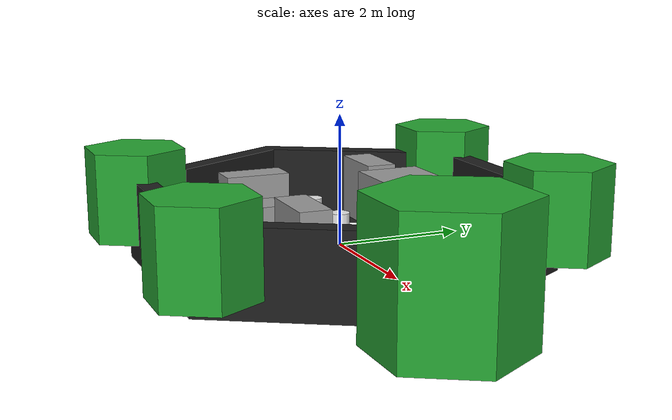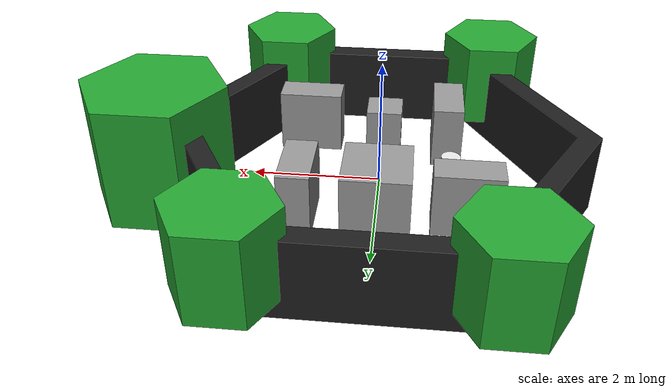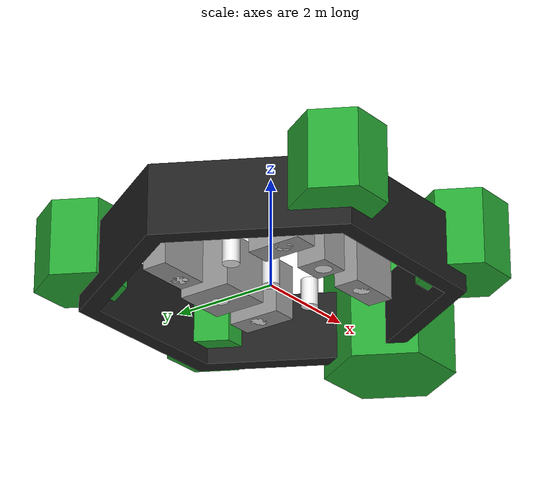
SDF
<?xml version='1.0'?>
<sdf version='1.6'>
  <model name='modified_start_world.world'>
    <link name='symbol'>
      <self_collide>0</self_collide>
      <enable_wind>0</enable_wind>
      <kinematic>0</kinematic>
      <pose frame=''>0 0 0 0 -0 0</pose>
      <visual name='one_one'>
        <pose frame=''>-1.1 -1.1 0.25 0 -0 0</pose>
        <geometry>
          <cylinder>
            <radius>0.15</radius>
            <length>0.5</length>
          </cylinder>
        </geometry>
        <material>
          <script>
            <uri>file://media/materials/scripts/gazebo.material</uri>
            <name>Gazebo/White</name>
          </script>
        </material>
        <transparency>0</transparency>
        <cast_shadows>1</cast_shadows>
      </visual>
      <visual name='one_two'>
        <pose frame=''>-1.1 0 0.25 0 -0 0</pose>
        <geometry>
          <cylinder>
            <radius>0.15</radius>
            <length>0.5</length>
          </cylinder>
        </geometry>
        <material>
          <script>
            <uri>file://media/materials/scripts/gazebo.material</uri>
            <name>Gazebo/White</name>
          </script>
        </material>
        <transparency>0</transparency>
        <cast_shadows>1</cast_shadows>
      </visual>
      <visual name='one_three'>
        <pose frame=''>-1.1 1.1 0.25 0 -0 0</pose>
        <geometry>
          <cylinder>
            <radius>0.15</radius>
            <length>0.5</length>
          </cylinder>
        </geometry>
        <material>
          <script>
            <uri>file://media/materials/scripts/gazebo.material</uri>
            <name>Gazebo/White</name>
          </script>
        </material>
        <transparency>0</transparency>
        <cast_shadows>1</cast_shadows>
      </visual>
      <visual name='two_one'>
        <pose frame=''>0 -1.1 0.25 0 -0 0</pose>
        <geometry>
          <cylinder>
            <radius>0.15</radius>
            <length>0.5</length>
          </cylinder>
        </geometry>
        <material>
          <script>
            <uri>file://media/materials/scripts/gazebo.material</uri>
            <name>Gazebo/White</name>
          </script>
        </material>
        <transparency>0</transparency>
        <cast_shadows>1</cast_shadows>
      </visual>
      <visual name='two_two'>
        <pose frame=''>0 0 0.25 0 -0 0</pose>
        <geometry>
          <cylinder>
            <radius>0.15</radius>
            <length>0.5</length>
          </cylinder>
        </geometry>
        <material>
          <script>
            <uri>file://media/materials/scripts/gazebo.material</uri>
            <name>Gazebo/White</name>
          </script>
        </material>
        <transparency>0</transparency>
        <cast_shadows>1</cast_shadows>
      </visual>
      <visual name='two_three'>
        <pose frame=''>0 1.1 0.25 0 -0 0</pose>
        <geometry>
          <cylinder>
            <radius>0.15</radius>
            <length>0.5</length>
          </cylinder>
        </geometry>
        <material>
          <script>
            <uri>file://media/materials/scripts/gazebo.material</uri>
            <name>Gazebo/White</name>
          </script>
        </material>
        <transparency>0</transparency>
        <cast_shadows>1</cast_shadows>
      </visual>
      <visual name='three_one'>
        <pose frame=''>1.1 -1.1 0.25 0 -0 0</pose>
        <geometry>
          <cylinder>
            <radius>0.15</radius>
            <length>0.5</length>
          </cylinder>
        </geometry>
        <material>
          <script>
            <uri>file://media/materials/scripts/gazebo.material</uri>
            <name>Gazebo/White</name>
          </script>
        </material>
        <transparency>0</transparency>
        <cast_shadows>1</cast_shadows>
      </visual>
      <visual name='three_two'>
        <pose frame=''>1.1 0 0.25 0 -0 0</pose>
        <geometry>
          <cylinder>
            <radius>0.15</radius>
            <length>0.5</length>
          </cylinder>
        </geometry>
        <material>
          <script>
            <uri>file://media/materials/scripts/gazebo.material</uri>
            <name>Gazebo/White</name>
          </script>
        </material>
        <transparency>0</transparency>
        <cast_shadows>1</cast_shadows>
      </visual>
      <visual name='three_three'>
        <pose frame=''>1.1 1.1 0.25 0 -0 0</pose>
        <geometry>
          <cylinder>
            <radius>0.15</radius>
            <length>0.5</length>
          </cylinder>
        </geometry>
        <material>
          <script>
            <uri>file://media/materials/scripts/gazebo.material</uri>
            <name>Gazebo/White</name>
          </script>
        </material>
        <transparency>0</transparency>
        <cast_shadows>1</cast_shadows>
      </visual>
      <visual name='head'>
        <pose frame=''>3.5 0 -0.5 0 -0 0</pose>
        <geometry>
          <mesh>
            <uri>model://turtlebot3/meshes/hexagon.dae</uri>
            <scale>0.8 0.8 0.8</scale>
          </mesh>
        </geometry>
        <material>
          <script>
            <uri>file://media/materials/scripts/gazebo.material</uri>
            <name>Gazebo/Green</name>
          </script>
        </material>
        <transparency>0</transparency>
        <cast_shadows>1</cast_shadows>
      </visual>
      <visual name='left_hand'>
        <pose frame=''>1.8 2.7 0 0 -0 0</pose>
        <geometry>
          <mesh>
            <uri>model://turtlebot3/meshes/hexagon.dae</uri>
            <scale>0.55 0.55 0.55</scale>
          </mesh>
        </geometry>
        <material>
          <script>
            <uri>file://media/materials/scripts/gazebo.material</uri>
            <name>Gazebo/Green</name>
          </script>
        </material>
        <transparency>0</transparency>
        <cast_shadows>1</cast_shadows>
      </visual>
      <visual name='right_hand'>
        <pose frame=''>1.8 -2.7 0 0 -0 0</pose>
        <geometry>
          <mesh>
            <uri>model://turtlebot3/meshes/hexagon.dae</uri>
            <scale>0.55 0.55 0.55</scale>
          </mesh>
        </geometry>
        <material>
          <script>
            <uri>file://media/materials/scripts/gazebo.material</uri>
            <name>Gazebo/Green</name>
          </script>
        </material>
        <transparency>0</transparency>
        <cast_shadows>1</cast_shadows>
      </visual>
      <visual name='left_foot'>
        <pose frame=''>-1.8 2.7 0 0 -0 0</pose>
        <geometry>
          <mesh>
            <uri>model://turtlebot3/meshes/hexagon.dae</uri>
            <scale>0.55 0.55 0.55</scale>
          </mesh>
        </geometry>
        <material>
          <script>
            <uri>file://media/materials/scripts/gazebo.material</uri>
            <name>Gazebo/Green</name>
          </script>
        </material>
        <transparency>0</transparency>
        <cast_shadows>1</cast_shadows>
      </visual>
      <visual name='right_foot'>
        <pose frame=''>-1.8 -2.7 0 0 -0 0</pose>
        <geometry>
          <mesh>
            <uri>model://turtlebot3/meshes/hexagon.dae</uri>
            <scale>0.55 0.55 0.55</scale>
          </mesh>
        </geometry>
        <material>
          <script>
            <uri>file://media/materials/scripts/gazebo.material</uri>
            <name>Gazebo/Green</name>
          </script>
        </material>
        <transparency>0</transparency>
        <cast_shadows>1</cast_shadows>
      </visual>
      <visual name='body'>
        <pose frame=''>0 0 -0.3 0 0 -1.5708</pose>
        <geometry>
          <mesh>
            <uri>model://turtlebot3/meshes/wall.dae</uri>
            <scale>0.25 0.25 0.25</scale>
          </mesh>
        </geometry>
        <material>
          <script>
            <uri>file://media/materials/scripts/gazebo.material</uri>
            <name>Gazebo/FlatBlack</name>
          </script>
        </material>
        <transparency>0</transparency>
        <cast_shadows>1</cast_shadows>
      </visual>
      <collision name='one_one'>
        <laser_retro>0</laser_retro>
        <max_contacts>10</max_contacts>
        <pose frame=''>-1.1 -1.1 0.25 0 -0 0</pose>
        <geometry>
          <cylinder>
            <radius>0.15</radius>
            <length>0.5</length>
          </cylinder>
        </geometry>
        <surface>
          <friction>
            <ode>
              <mu>1</mu>
              <mu2>1</mu2>
              <fdir1>0 0 0</fdir1>
              <slip1>0</slip1>
              <slip2>0</slip2>
            </ode>
            <torsional>
              <coefficient>1</coefficient>
              <patch_radius>0</patch_radius>
              <surface_radius>0</surface_radius>
              <use_patch_radius>1</use_patch_radius>
              <ode>
                <slip>0</slip>
              </ode>
            </torsional>
          </friction>
          <bounce>
            <restitution_coefficient>0</restitution_coefficient>
            <threshold>1e+06</threshold>
          </bounce>
          <contact>
            <collide_without_contact>0</collide_without_contact>
            <collide_without_contact_bitmask>1</collide_without_contact_bitmask>
            <collide_bitmask>1</collide_bitmask>
            <ode>
              <soft_cfm>0</soft_cfm>
              <soft_erp>0.2</soft_erp>
              <kp>1e+13</kp>
              <kd>1</kd>
              <max_vel>0.01</max_vel>
              <min_depth>0</min_depth>
            </ode>
            <bullet>
              <split_impulse>1</split_impulse>
              <split_impulse_penetration_threshold>-0.01</split_impulse_penetration_threshold>
              <soft_cfm>0</soft_cfm>
              <soft_erp>0.2</soft_erp>
              <kp>1e+13</kp>
              <kd>1</kd>
            </bullet>
          </contact>
        </surface>
      </collision>
      <collision name='one_two'>
        <laser_retro>0</laser_retro>
        <max_contacts>10</max_contacts>
        <pose frame=''>-1.1 0 0.25 0 -0 0</pose>
        <geometry>
          <cylinder>
            <radius>0.15</radius>
            <length>0.5</length>
          </cylinder>
        </geometry>
        <surface>
          <friction>
            <ode>
              <mu>1</mu>
              <mu2>1</mu2>
              <fdir1>0 0 0</fdir1>
              <slip1>0</slip1>
              <slip2>0</slip2>
            </ode>
            <torsional>
              <coefficient>1</coefficient>
              <patch_radius>0</patch_radius>
              <surface_radius>0</surface_radius>
              <use_patch_radius>1</use_patch_radius>
              <ode>
                <slip>0</slip>
              </ode>
            </torsional>
          </friction>
          <bounce>
            <restitution_coefficient>0</restitution_coefficient>
            <threshold>1e+06</threshold>
          </bounce>
          <contact>
            <collide_without_contact>0</collide_without_contact>
            <collide_without_contact_bitmask>1</collide_without_contact_bitmask>
            <collide_bitmask>1</collide_bitmask>
            <ode>
              <soft_cfm>0</soft_cfm>
              <soft_erp>0.2</soft_erp>
              <kp>1e+13</kp>
              <kd>1</kd>
              <max_vel>0.01</max_vel>
              <min_depth>0</min_depth>
            </ode>
            <bullet>
              <split_impulse>1</split_impulse>
              <split_impulse_penetration_threshold>-0.01</split_impulse_penetration_threshold>
              <soft_cfm>0</soft_cfm>
              <soft_erp>0.2</soft_erp>
              <kp>1e+13</kp>
              <kd>1</kd>
            </bullet>
          </contact>
        </surface>
      </collision>
      <collision name='one_three'>
        <laser_retro>0</laser_retro>
        <max_contacts>10</max_contacts>
        <pose frame=''>-1.1 1.1 0.25 0 -0 0</pose>
        <geometry>
          <cylinder>
            <radius>0.15</radius>
            <length>0.5</length>
          </cylinder>
        </geometry>
        <surface>
          <friction>
            <ode>
              <mu>1</mu>
              <mu2>1</mu2>
              <fdir1>0 0 0</fdir1>
              <slip1>0</slip1>
              <slip2>0</slip2>
            </ode>
            <torsional>
              <coefficient>1</coefficient>
              <patch_radius>0</patch_radius>
              <surface_radius>0</surface_radius>
              <use_patch_radius>1</use_patch_radius>
              <ode>
                <slip>0</slip>
              </ode>
            </torsional>
          </friction>
          <bounce>
            <restitution_coefficient>0</restitution_coefficient>
            <threshold>1e+06</threshold>
          </bounce>
          <contact>
            <collide_without_contact>0</collide_without_contact>
            <collide_without_contact_bitmask>1</collide_without_contact_bitmask>
            <collide_bitmask>1</collide_bitmask>
            <ode>
              <soft_cfm>0</soft_cfm>
              <soft_erp>0.2</soft_erp>
              <kp>1e+13</kp>
              <kd>1</kd>
              <max_vel>0.01</max_vel>
              <min_depth>0</min_depth>
            </ode>
            <bullet>
              <split_impulse>1</split_impulse>
              <split_impulse_penetration_threshold>-0.01</split_impulse_penetration_threshold>
              <soft_cfm>0</soft_cfm>
              <soft_erp>0.2</soft_erp>
              <kp>1e+13</kp>
              <kd>1</kd>
            </bullet>
          </contact>
        </surface>
      </collision>
      <collision name='two_one'>
        <laser_retro>0</laser_retro>
        <max_contacts>10</max_contacts>
        <pose frame=''>0 -1.1 0.25 0 -0 0</pose>
        <geometry>
          <cylinder>
            <radius>0.15</radius>
            <length>0.5</length>
          </cylinder>
        </geometry>
        <surface>
          <friction>
            <ode>
              <mu>1</mu>
              <mu2>1</mu2>
              <fdir1>0 0 0</fdir1>
              <slip1>0</slip1>
              <slip2>0</slip2>
            </ode>
            <torsional>
              <coefficient>1</coefficient>
              <patch_radius>0</patch_radius>
              <surface_radius>0</surface_radius>
              <use_patch_radius>1</use_patch_radius>
              <ode>
                <slip>0</slip>
              </ode>
            </torsional>
          </friction>
          <bounce>
            <restitution_coefficient>0</restitution_coefficient>
            <threshold>1e+06</threshold>
          </bounce>
          <contact>
            <collide_without_contact>0</collide_without_contact>
            <collide_without_contact_bitmask>1</collide_without_contact_bitmask>
            <collide_bitmask>1</collide_bitmask>
            <ode>
              <soft_cfm>0</soft_cfm>
              <soft_erp>0.2</soft_erp>
              <kp>1e+13</kp>
              <kd>1</kd>
              <max_vel>0.01</max_vel>
              <min_depth>0</min_depth>
            </ode>
            <bullet>
              <split_impulse>1</split_impulse>
              <split_impulse_penetration_threshold>-0.01</split_impulse_penetration_threshold>
              <soft_cfm>0</soft_cfm>
              <soft_erp>0.2</soft_erp>
              <kp>1e+13</kp>
              <kd>1</kd>
            </bullet>
          </contact>
        </surface>
      </collision>
      <collision name='two_two'>
        <laser_retro>0</laser_retro>
        <max_contacts>10</max_contacts>
        <pose frame=''>0 0 0.25 0 -0 0</pose>
        <geometry>
          <cylinder>
            <radius>0.15</radius>
            <length>0.5</length>
          </cylinder>
        </geometry>
        <surface>
          <friction>
            <ode>
              <mu>1</mu>
              <mu2>1</mu2>
              <fdir1>0 0 0</fdir1>
              <slip1>0</slip1>
              <slip2>0</slip2>
            </ode>
            <torsional>
              <coefficient>1</coefficient>
              <patch_radius>0</patch_radius>
              <surface_radius>0</surface_radius>
              <use_patch_radius>1</use_patch_radius>
              <ode>
                <slip>0</slip>
              </ode>
            </torsional>
          </friction>
          <bounce>
            <restitution_coefficient>0</restitution_coefficient>
            <threshold>1e+06</threshold>
          </bounce>
          <contact>
            <collide_without_contact>0</collide_without_contact>
            <collide_without_contact_bitmask>1</collide_without_contact_bitmask>
            <collide_bitmask>1</collide_bitmask>
            <ode>
              <soft_cfm>0</soft_cfm>
              <soft_erp>0.2</soft_erp>
              <kp>1e+13</kp>
              <kd>1</kd>
              <max_vel>0.01</max_vel>
              <min_depth>0</min_depth>
            </ode>
            <bullet>
              <split_impulse>1</split_impulse>
              <split_impulse_penetration_threshold>-0.01</split_impulse_penetration_threshold>
              <soft_cfm>0</soft_cfm>
              <soft_erp>0.2</soft_erp>
              <kp>1e+13</kp>
              <kd>1</kd>
            </bullet>
          </contact>
        </surface>
      </collision>
      <collision name='two_three'>
        <laser_retro>0</laser_retro>
        <max_contacts>10</max_contacts>
        <pose frame=''>0 1.1 0.25 0 -0 0</pose>
        <geometry>
          <cylinder>
            <radius>0.15</radius>
            <length>0.5</length>
          </cylinder>
        </geometry>
        <surface>
          <friction>
            <ode>
              <mu>1</mu>
              <mu2>1</mu2>
              <fdir1>0 0 0</fdir1>
              <slip1>0</slip1>
              <slip2>0</slip2>
            </ode>
            <torsional>
              <coefficient>1</coefficient>
              <patch_radius>0</patch_radius>
              <surface_radius>0</surface_radius>
              <use_patch_radius>1</use_patch_radius>
              <ode>
                <slip>0</slip>
              </ode>
            </torsional>
          </friction>
          <bounce>
            <restitution_coefficient>0</restitution_coefficient>
            <threshold>1e+06</threshold>
          </bounce>
          <contact>
            <collide_without_contact>0</collide_without_contact>
            <collide_without_contact_bitmask>1</collide_without_contact_bitmask>
            <collide_bitmask>1</collide_bitmask>
            <ode>
              <soft_cfm>0</soft_cfm>
              <soft_erp>0.2</soft_erp>
              <kp>1e+13</kp>
              <kd>1</kd>
              <max_vel>0.01</max_vel>
              <min_depth>0</min_depth>
            </ode>
            <bullet>
              <split_impulse>1</split_impulse>
              <split_impulse_penetration_threshold>-0.01</split_impulse_penetration_threshold>
              <soft_cfm>0</soft_cfm>
              <soft_erp>0.2</soft_erp>
              <kp>1e+13</kp>
              <kd>1</kd>
            </bullet>
          </contact>
        </surface>
      </collision>
      <collision name='three_one'>
        <laser_retro>0</laser_retro>
        <max_contacts>10</max_contacts>
        <pose frame=''>1.1 -1.1 0.25 0 -0 0</pose>
        <geometry>
          <cylinder>
            <radius>0.15</radius>
            <length>0.5</length>
          </cylinder>
        </geometry>
        <surface>
          <friction>
            <ode>
              <mu>1</mu>
              <mu2>1</mu2>
              <fdir1>0 0 0</fdir1>
              <slip1>0</slip1>
              <slip2>0</slip2>
            </ode>
            <torsional>
              <coefficient>1</coefficient>
              <patch_radius>0</patch_radius>
              <surface_radius>0</surface_radius>
              <use_patch_radius>1</use_patch_radius>
              <ode>
                <slip>0</slip>
              </ode>
            </torsional>
          </friction>
          <bounce>
            <restitution_coefficient>0</restitution_coefficient>
            <threshold>1e+06</threshold>
          </bounce>
          <contact>
            <collide_without_contact>0</collide_without_contact>
            <collide_without_contact_bitmask>1</collide_without_contact_bitmask>
            <collide_bitmask>1</collide_bitmask>
            <ode>
              <soft_cfm>0</soft_cfm>
              <soft_erp>0.2</soft_erp>
              <kp>1e+13</kp>
              <kd>1</kd>
              <max_vel>0.01</max_vel>
              <min_depth>0</min_depth>
            </ode>
            <bullet>
              <split_impulse>1</split_impulse>
              <split_impulse_penetration_threshold>-0.01</split_impulse_penetration_threshold>
              <soft_cfm>0</soft_cfm>
              <soft_erp>0.2</soft_erp>
              <kp>1e+13</kp>
              <kd>1</kd>
            </bullet>
          </contact>
        </surface>
      </collision>
      <collision name='three_two'>
        <laser_retro>0</laser_retro>
        <max_contacts>10</max_contacts>
        <pose frame=''>1.1 0 0.25 0 -0 0</pose>
        <geometry>
          <cylinder>
            <radius>0.15</radius>
            <length>0.5</length>
          </cylinder>
        </geometry>
        <surface>
          <friction>
            <ode>
              <mu>1</mu>
              <mu2>1</mu2>
              <fdir1>0 0 0</fdir1>
              <slip1>0</slip1>
              <slip2>0</slip2>
            </ode>
            <torsional>
              <coefficient>1</coefficient>
              <patch_radius>0</patch_radius>
              <surface_radius>0</surface_radius>
              <use_patch_radius>1</use_patch_radius>
              <ode>
                <slip>0</slip>
              </ode>
            </torsional>
          </friction>
          <bounce>
            <restitution_coefficient>0</restitution_coefficient>
            <threshold>1e+06</threshold>
          </bounce>
          <contact>
            <collide_without_contact>0</collide_without_contact>
            <collide_without_contact_bitmask>1</collide_without_contact_bitmask>
            <collide_bitmask>1</collide_bitmask>
            <ode>
              <soft_cfm>0</soft_cfm>
              <soft_erp>0.2</soft_erp>
              <kp>1e+13</kp>
              <kd>1</kd>
              <max_vel>0.01</max_vel>
              <min_depth>0</min_depth>
            </ode>
            <bullet>
              <split_impulse>1</split_impulse>
              <split_impulse_penetration_threshold>-0.01</split_impulse_penetration_threshold>
              <soft_cfm>0</soft_cfm>
              <soft_erp>0.2</soft_erp>
              <kp>1e+13</kp>
              <kd>1</kd>
            </bullet>
          </contact>
        </surface>
      </collision>
      <collision name='three_three'>
        <laser_retro>0</laser_retro>
        <max_contacts>10</max_contacts>
        <pose frame=''>1.1 1.1 0.25 0 -0 0</pose>
        <geometry>
          <cylinder>
            <radius>0.15</radius>
            <length>0.5</length>
          </cylinder>
        </geometry>
        <surface>
          <friction>
            <ode>
              <mu>1</mu>
              <mu2>1</mu2>
              <fdir1>0 0 0</fdir1>
              <slip1>0</slip1>
              <slip2>0</slip2>
            </ode>
            <torsional>
              <coefficient>1</coefficient>
              <patch_radius>0</patch_radius>
              <surface_radius>0</surface_radius>
              <use_patch_radius>1</use_patch_radius>
              <ode>
                <slip>0</slip>
              </ode>
            </torsional>
          </friction>
          <bounce>
            <restitution_coefficient>0</restitution_coefficient>
            <threshold>1e+06</threshold>
          </bounce>
          <contact>
            <collide_without_contact>0</collide_without_contact>
            <collide_without_contact_bitmask>1</collide_without_contact_bitmask>
            <collide_bitmask>1</collide_bitmask>
            <ode>
              <soft_cfm>0</soft_cfm>
              <soft_erp>0.2</soft_erp>
              <kp>1e+13</kp>
              <kd>1</kd>
              <max_vel>0.01</max_vel>
              <min_depth>0</min_depth>
            </ode>
            <bullet>
              <split_impulse>1</split_impulse>
              <split_impulse_penetration_threshold>-0.01</split_impulse_penetration_threshold>
              <soft_cfm>0</soft_cfm>
              <soft_erp>0.2</soft_erp>
              <kp>1e+13</kp>
              <kd>1</kd>
            </bullet>
          </contact>
        </surface>
      </collision>
      <collision name='head'>
        <laser_retro>0</laser_retro>
        <max_contacts>10</max_contacts>
        <pose frame=''>3.5 0 -0.5 0 -0 0</pose>
        <geometry>
          <mesh>
            <uri>/home/rishabh/genesys2_ws/src/turtlebot3/turtlebot3_simulations/turtlebot3_gazebo/models/turtlebot3/meshes/hexagon.dae</uri>
            <scale>0.8 0.8 0.8</scale>
          </mesh>
        </geometry>
        <surface>
          <friction>
            <ode>
              <mu>1</mu>
              <mu2>1</mu2>
              <fdir1>0 0 0</fdir1>
              <slip1>0</slip1>
              <slip2>0</slip2>
            </ode>
            <torsional>
              <coefficient>1</coefficient>
              <patch_radius>0</patch_radius>
              <surface_radius>0</surface_radius>
              <use_patch_radius>1</use_patch_radius>
              <ode>
                <slip>0</slip>
              </ode>
            </torsional>
          </friction>
          <bounce>
            <restitution_coefficient>0</restitution_coefficient>
            <threshold>1e+06</threshold>
          </bounce>
          <contact>
            <collide_without_contact>0</collide_without_contact>
            <collide_without_contact_bitmask>1</collide_without_contact_bitmask>
            <collide_bitmask>1</collide_bitmask>
            <ode>
              <soft_cfm>0</soft_cfm>
              <soft_erp>0.2</soft_erp>
              <kp>1e+13</kp>
              <kd>1</kd>
              <max_vel>0.01</max_vel>
              <min_depth>0</min_depth>
            </ode>
            <bullet>
              <split_impulse>1</split_impulse>
              <split_impulse_penetration_threshold>-0.01</split_impulse_penetration_threshold>
              <soft_cfm>0</soft_cfm>
              <soft_erp>0.2</soft_erp>
              <kp>1e+13</kp>
              <kd>1</kd>
            </bullet>
          </contact>
        </surface>
      </collision>
      <collision name='left_hand'>
        <laser_retro>0</laser_retro>
        <max_contacts>10</max_contacts>
        <pose frame=''>1.8 2.7 0 0 -0 0</pose>
        <geometry>
          <mesh>
            <uri>/home/rishabh/genesys2_ws/src/turtlebot3/turtlebot3_simulations/turtlebot3_gazebo/models/turtlebot3/meshes/hexagon.dae</uri>
            <scale>0.55 0.55 0.55</scale>
          </mesh>
        </geometry>
        <surface>
          <friction>
            <ode>
              <mu>1</mu>
              <mu2>1</mu2>
              <fdir1>0 0 0</fdir1>
              <slip1>0</slip1>
              <slip2>0</slip2>
            </ode>
            <torsional>
              <coefficient>1</coefficient>
              <patch_radius>0</patch_radius>
              <surface_radius>0</surface_radius>
              <use_patch_radius>1</use_patch_radius>
              <ode>
                <slip>0</slip>
              </ode>
            </torsional>
          </friction>
          <bounce>
            <restitution_coefficient>0</restitution_coefficient>
            <threshold>1e+06</threshold>
          </bounce>
          <contact>
            <collide_without_contact>0</collide_without_contact>
            <collide_without_contact_bitmask>1</collide_without_contact_bitmask>
            <collide_bitmask>1</collide_bitmask>
            <ode>
              <soft_cfm>0</soft_cfm>
              <soft_erp>0.2</soft_erp>
              <kp>1e+13</kp>
              <kd>1</kd>
              <max_vel>0.01</max_vel>
              <min_depth>0</min_depth>
            </ode>
            <bullet>
              <split_impulse>1</split_impulse>
              <split_impulse_penetration_threshold>-0.01</split_impulse_penetration_threshold>
              <soft_cfm>0</soft_cfm>
              <soft_erp>0.2</soft_erp>
              <kp>1e+13</kp>
              <kd>1</kd>
            </bullet>
          </contact>
        </surface>
      </collision>
      <collision name='left_foot'>
        <laser_retro>0</laser_retro>
        <max_contacts>10</max_contacts>
        <pose frame=''>-1.8 2.7 0 0 -0 0</pose>
        <geometry>
          <mesh>
            <uri>/home/rishabh/genesys2_ws/src/turtlebot3/turtlebot3_simulations/turtlebot3_gazebo/models/turtlebot3/meshes/hexagon.dae</uri>
            <scale>0.55 0.55 0.55</scale>
          </mesh>
        </geometry>
        <surface>
          <friction>
            <ode>
              <mu>1</mu>
              <mu2>1</mu2>
              <fdir1>0 0 0</fdir1>
              <slip1>0</slip1>
              <slip2>0</slip2>
            </ode>
            <torsional>
              <coefficient>1</coefficient>
              <patch_radius>0</patch_radius>
              <surface_radius>0</surface_radius>
              <use_patch_radius>1</use_patch_radius>
              <ode>
                <slip>0</slip>
              </ode>
            </torsional>
          </friction>
          <bounce>
            <restitution_coefficient>0</restitution_coefficient>
            <threshold>1e+06</threshold>
          </bounce>
          <contact>
            <collide_without_contact>0</collide_without_contact>
            <collide_without_contact_bitmask>1</collide_without_contact_bitmask>
            <collide_bitmask>1</collide_bitmask>
            <ode>
              <soft_cfm>0</soft_cfm>
              <soft_erp>0.2</soft_erp>
              <kp>1e+13</kp>
              <kd>1</kd>
              <max_vel>0.01</max_vel>
              <min_depth>0</min_depth>
            </ode>
            <bullet>
              <split_impulse>1</split_impulse>
              <split_impulse_penetration_threshold>-0.01</split_impulse_penetration_threshold>
              <soft_cfm>0</soft_cfm>
              <soft_erp>0.2</soft_erp>
              <kp>1e+13</kp>
              <kd>1</kd>
            </bullet>
          </contact>
        </surface>
      </collision>
      <collision name='right_hand'>
        <laser_retro>0</laser_retro>
        <max_contacts>10</max_contacts>
        <pose frame=''>1.8 -2.7 0 0 -0 0</pose>
        <geometry>
          <mesh>
            <uri>/home/rishabh/genesys2_ws/src/turtlebot3/turtlebot3_simulations/turtlebot3_gazebo/models/turtlebot3/meshes/hexagon.dae</uri>
            <scale>0.55 0.55 0.55</scale>
          </mesh>
        </geometry>
        <surface>
          <friction>
            <ode>
              <mu>1</mu>
              <mu2>1</mu2>
              <fdir1>0 0 0</fdir1>
              <slip1>0</slip1>
              <slip2>0</slip2>
            </ode>
            <torsional>
              <coefficient>1</coefficient>
              <patch_radius>0</patch_radius>
              <surface_radius>0</surface_radius>
              <use_patch_radius>1</use_patch_radius>
              <ode>
                <slip>0</slip>
              </ode>
            </torsional>
          </friction>
          <bounce>
            <restitution_coefficient>0</restitution_coefficient>
            <threshold>1e+06</threshold>
          </bounce>
          <contact>
            <collide_without_contact>0</collide_without_contact>
            <collide_without_contact_bitmask>1</collide_without_contact_bitmask>
            <collide_bitmask>1</collide_bitmask>
            <ode>
              <soft_cfm>0</soft_cfm>
              <soft_erp>0.2</soft_erp>
              <kp>1e+13</kp>
              <kd>1</kd>
              <max_vel>0.01</max_vel>
              <min_depth>0</min_depth>
            </ode>
            <bullet>
              <split_impulse>1</split_impulse>
              <split_impulse_penetration_threshold>-0.01</split_impulse_penetration_threshold>
              <soft_cfm>0</soft_cfm>
              <soft_erp>0.2</soft_erp>
              <kp>1e+13</kp>
              <kd>1</kd>
            </bullet>
          </contact>
        </surface>
      </collision>
      <collision name='right_foot'>
        <laser_retro>0</laser_retro>
        <max_contacts>10</max_contacts>
        <pose frame=''>-1.8 -2.7 0 0 -0 0</pose>
        <geometry>
          <mesh>
            <uri>/home/rishabh/genesys2_ws/src/turtlebot3/turtlebot3_simulations/turtlebot3_gazebo/models/turtlebot3/meshes/hexagon.dae</uri>
            <scale>0.55 0.55 0.55</scale>
          </mesh>
        </geometry>
        <surface>
          <friction>
            <ode>
              <mu>1</mu>
              <mu2>1</mu2>
              <fdir1>0 0 0</fdir1>
              <slip1>0</slip1>
              <slip2>0</slip2>
            </ode>
            <torsional>
              <coefficient>1</coefficient>
              <patch_radius>0</patch_radius>
              <surface_radius>0</surface_radius>
              <use_patch_radius>1</use_patch_radius>
              <ode>
                <slip>0</slip>
              </ode>
            </torsional>
          </friction>
          <bounce>
            <restitution_coefficient>0</restitution_coefficient>
            <threshold>1e+06</threshold>
          </bounce>
          <contact>
            <collide_without_contact>0</collide_without_contact>
            <collide_without_contact_bitmask>1</collide_without_contact_bitmask>
            <collide_bitmask>1</collide_bitmask>
            <ode>
              <soft_cfm>0</soft_cfm>
              <soft_erp>0.2</soft_erp>
              <kp>1e+13</kp>
              <kd>1</kd>
              <max_vel>0.01</max_vel>
              <min_depth>0</min_depth>
            </ode>
            <bullet>
              <split_impulse>1</split_impulse>
              <split_impulse_penetration_threshold>-0.01</split_impulse_penetration_threshold>
              <soft_cfm>0</soft_cfm>
              <soft_erp>0.2</soft_erp>
              <kp>1e+13</kp>
              <kd>1</kd>
            </bullet>
          </contact>
        </surface>
      </collision>
      <collision name='body'>
        <laser_retro>0</laser_retro>
        <max_contacts>10</max_contacts>
        <pose frame=''>0 0 -0.3 0 0 -1.5708</pose>
        <geometry>
          <mesh>
            <uri>/home/rishabh/genesys2_ws/src/turtlebot3/turtlebot3_simulations/turtlebot3_gazebo/models/turtlebot3/meshes/wall.dae</uri>
            <scale>0.25 0.25 0.25</scale>
          </mesh>
        </geometry>
        <surface>
          <friction>
            <ode>
              <mu>1</mu>
              <mu2>1</mu2>
              <fdir1>0 0 0</fdir1>
              <slip1>0</slip1>
              <slip2>0</slip2>
            </ode>
            <torsional>
              <coefficient>1</coefficient>
              <patch_radius>0</patch_radius>
              <surface_radius>0</surface_radius>
              <use_patch_radius>1</use_patch_radius>
              <ode>
                <slip>0</slip>
              </ode>
            </torsional>
          </friction>
          <bounce>
            <restitution_coefficient>0</restitution_coefficient>
            <threshold>1e+06</threshold>
          </bounce>
          <contact>
            <collide_without_contact>0</collide_without_contact>
            <collide_without_contact_bitmask>1</collide_without_contact_bitmask>
            <collide_bitmask>1</collide_bitmask>
            <ode>
              <soft_cfm>0</soft_cfm>
              <soft_erp>0.2</soft_erp>
              <kp>1e+13</kp>
              <kd>1</kd>
              <max_vel>0.01</max_vel>
              <min_depth>0</min_depth>
            </ode>
            <bullet>
              <split_impulse>1</split_impulse>
              <split_impulse_penetration_threshold>-0.01</split_impulse_penetration_threshold>
              <soft_cfm>0</soft_cfm>
              <soft_erp>0.2</soft_erp>
              <kp>1e+13</kp>
              <kd>1</kd>
            </bullet>
          </contact>
        </surface>
      </collision>
    </link>
    <link name='link_0'>
      <inertial>
        <mass>1</mass>
        <inertia>
          <ixx>0.166667</ixx>
          <ixy>0</ixy>
          <ixz>0</ixz>
          <iyy>0.166667</iyy>
          <iyz>0</iyz>
          <izz>0.166667</izz>
        </inertia>
      </inertial>
      <pose frame=''>-0.018227 1.03868 0.5 0 -0 0</pose>
      <visual name='visual'>
        <pose frame=''>0 0 0 0 -0 0</pose>
        <geometry>
          <box>
            <size>1 1 1</size>
          </box>
        </geometry>
        <material>
          <lighting>1</lighting>
          <script>
            <uri>file://media/materials/scripts/gazebo.material</uri>
            <name>Gazebo/Grey</name>
          </script>
        </material>
        <transparency>0</transparency>
        <cast_shadows>1</cast_shadows>
      </visual>
      <collision name='collision'>
        <laser_retro>0</laser_retro>
        <max_contacts>10</max_contacts>
        <pose frame=''>0 0 0 0 -0 0</pose>
        <geometry>
          <box>
            <size>1 1 1</size>
          </box>
        </geometry>
        <surface>
          <friction>
            <ode>
              <mu>1</mu>
              <mu2>1</mu2>
              <fdir1>0 0 0</fdir1>
              <slip1>0</slip1>
              <slip2>0</slip2>
            </ode>
            <torsional>
              <coefficient>1</coefficient>
              <patch_radius>0</patch_radius>
              <surface_radius>0</surface_radius>
              <use_patch_radius>1</use_patch_radius>
              <ode>
                <slip>0</slip>
              </ode>
            </torsional>
          </friction>
          <bounce>
            <restitution_coefficient>0</restitution_coefficient>
            <threshold>1e+06</threshold>
          </bounce>
          <contact>
            <collide_without_contact>0</collide_without_contact>
            <collide_without_contact_bitmask>1</collide_without_contact_bitmask>
            <collide_bitmask>1</collide_bitmask>
            <ode>
              <soft_cfm>0</soft_cfm>
              <soft_erp>0.2</soft_erp>
              <kp>1e+13</kp>
              <kd>1</kd>
              <max_vel>0.01</max_vel>
              <min_depth>0</min_depth>
            </ode>
            <bullet>
              <split_impulse>1</split_impulse>
              <split_impulse_penetration_threshold>-0.01</split_impulse_penetration_threshold>
              <soft_cfm>0</soft_cfm>
              <soft_erp>0.2</soft_erp>
              <kp>1e+13</kp>
              <kd>1</kd>
            </bullet>
          </contact>
        </surface>
      </collision>
    </link>
    <link name='link_0_clone'>
      <inertial>
        <mass>0.237024</mass>
        <inertia>
          <ixx>0.017243</ixx>
          <ixy>0</ixy>
          <ixz>0</ixz>
          <iyy>0.0176037</iyy>
          <iyz>0</iyz>
          <izz>0.0124376</izz>
        </inertia>
        <pose frame=''>0 0 0 0 -0 0</pose>
      </inertial>
      <pose frame=''>-0.019475 -1.06633 0.379935 0 -0 0</pose>
      <visual name='visual'>
        <pose frame=''>0 0 0 0 -0 0</pose>
        <geometry>
          <box>
            <size>0.56919 0.552914 0.753167</size>
          </box>
        </geometry>
        <material>
          <lighting>1</lighting>
          <script>
            <uri>file://media/materials/scripts/gazebo.material</uri>
            <name>Gazebo/Grey</name>
          </script>
          <shader type='pixel'/>
        </material>
        <transparency>0</transparency>
        <cast_shadows>1</cast_shadows>
      </visual>
      <collision name='collision'>
        <laser_retro>0</laser_retro>
        <max_contacts>10</max_contacts>
        <pose frame=''>0 0 0 0 -0 0</pose>
        <geometry>
          <box>
            <size>0.56919 0.552914 0.753167</size>
          </box>
        </geometry>
        <surface>
          <friction>
            <ode>
              <mu>1</mu>
              <mu2>1</mu2>
              <fdir1>0 0 0</fdir1>
              <slip1>0</slip1>
              <slip2>0</slip2>
            </ode>
            <torsional>
              <coefficient>1</coefficient>
              <patch_radius>0</patch_radius>
              <surface_radius>0</surface_radius>
              <use_patch_radius>1</use_patch_radius>
              <ode>
                <slip>0</slip>
              </ode>
            </torsional>
          </friction>
          <bounce>
            <restitution_coefficient>0</restitution_coefficient>
            <threshold>1e+06</threshold>
          </bounce>
          <contact>
            <collide_without_contact>0</collide_without_contact>
            <collide_without_contact_bitmask>1</collide_without_contact_bitmask>
            <collide_bitmask>1</collide_bitmask>
            <ode>
              <soft_cfm>0</soft_cfm>
              <soft_erp>0.2</soft_erp>
              <kp>1e+13</kp>
              <kd>1</kd>
              <max_vel>0.01</max_vel>
              <min_depth>0</min_depth>
            </ode>
            <bullet>
              <split_impulse>1</split_impulse>
              <split_impulse_penetration_threshold>-0.01</split_impulse_penetration_threshold>
              <soft_cfm>0</soft_cfm>
              <soft_erp>0.2</soft_erp>
              <kp>1e+13</kp>
              <kd>1</kd>
            </bullet>
          </contact>
        </surface>
      </collision>
    </link>
    <link name='link_1'>
      <inertial>
        <mass>0.474248</mass>
        <inertia>
          <ixx>0.0790414</ixx>
          <ixy>0</ixy>
          <ixz>0</ixz>
          <iyy>0.0484096</iyy>
          <iyz>0</iyz>
          <izz>0.0484096</izz>
        </inertia>
        <pose frame=''>0 0 0 0 -0 0</pose>
      </inertial>
      <pose frame=''>1.12048 1.0532 0.5 0 -0 0</pose>
      <visual name='visual'>
        <pose frame=''>0 0 0 0 -0 0</pose>
        <geometry>
          <box>
            <size>0.474254 1 1</size>
          </box>
        </geometry>
        <material>
          <lighting>1</lighting>
          <script>
            <uri>file://media/materials/scripts/gazebo.material</uri>
            <name>Gazebo/Grey</name>
          </script>
        </material>
        <transparency>0</transparency>
        <cast_shadows>1</cast_shadows>
      </visual>
      <collision name='collision'>
        <laser_retro>0</laser_retro>
        <max_contacts>10</max_contacts>
        <pose frame=''>0 0 0 0 -0 0</pose>
        <geometry>
          <box>
            <size>0.474254 1 1</size>
          </box>
        </geometry>
        <surface>
          <friction>
            <ode>
              <mu>1</mu>
              <mu2>1</mu2>
              <fdir1>0 0 0</fdir1>
              <slip1>0</slip1>
              <slip2>0</slip2>
            </ode>
            <torsional>
              <coefficient>1</coefficient>
              <patch_radius>0</patch_radius>
              <surface_radius>0</surface_radius>
              <use_patch_radius>1</use_patch_radius>
              <ode>
                <slip>0</slip>
              </ode>
            </torsional>
          </friction>
          <bounce>
            <restitution_coefficient>0</restitution_coefficient>
            <threshold>1e+06</threshold>
          </bounce>
          <contact>
            <collide_without_contact>0</collide_without_contact>
            <collide_without_contact_bitmask>1</collide_without_contact_bitmask>
            <collide_bitmask>1</collide_bitmask>
            <ode>
              <soft_cfm>0</soft_cfm>
              <soft_erp>0.2</soft_erp>
              <kp>1e+13</kp>
              <kd>1</kd>
              <max_vel>0.01</max_vel>
              <min_depth>0</min_depth>
            </ode>
            <bullet>
              <split_impulse>1</split_impulse>
              <split_impulse_penetration_threshold>-0.01</split_impulse_penetration_threshold>
              <soft_cfm>0</soft_cfm>
              <soft_erp>0.2</soft_erp>
              <kp>1e+13</kp>
              <kd>1</kd>
            </bullet>
          </contact>
        </surface>
      </collision>
    </link>
    <link name='link_1_clone'>
      <inertial>
        <mass>0.474248</mass>
        <inertia>
          <ixx>0.0790414</ixx>
          <ixy>0</ixy>
          <ixz>0</ixz>
          <iyy>0.0484096</iyy>
          <iyz>0</iyz>
          <izz>0.0484096</izz>
        </inertia>
        <pose frame=''>0 0 0 0 -0 0</pose>
      </inertial>
      <pose frame=''>-1.05126 -1.01456 0.5 0 -0 0</pose>
      <visual name='visual'>
        <pose frame=''>0 0 0 0 -0 0</pose>
        <geometry>
          <box>
            <size>0.474254 1 1</size>
          </box>
        </geometry>
        <material>
          <lighting>1</lighting>
          <script>
            <uri>file://media/materials/scripts/gazebo.material</uri>
            <name>Gazebo/Grey</name>
          </script>
          <shader type='pixel'/>
        </material>
        <transparency>0</transparency>
        <cast_shadows>1</cast_shadows>
      </visual>
      <collision name='collision'>
        <laser_retro>0</laser_retro>
        <max_contacts>10</max_contacts>
        <pose frame=''>0 0 0 0 -0 0</pose>
        <geometry>
          <box>
            <size>0.474254 1 1</size>
          </box>
        </geometry>
        <surface>
          <friction>
            <ode>
              <mu>1</mu>
              <mu2>1</mu2>
              <fdir1>0 0 0</fdir1>
              <slip1>0</slip1>
              <slip2>0</slip2>
            </ode>
            <torsional>
              <coefficient>1</coefficient>
              <patch_radius>0</patch_radius>
              <surface_radius>0</surface_radius>
              <use_patch_radius>1</use_patch_radius>
              <ode>
                <slip>0</slip>
              </ode>
            </torsional>
          </friction>
          <bounce>
            <restitution_coefficient>0</restitution_coefficient>
            <threshold>1e+06</threshold>
          </bounce>
          <contact>
            <collide_without_contact>0</collide_without_contact>
            <collide_without_contact_bitmask>1</collide_without_contact_bitmask>
            <collide_bitmask>1</collide_bitmask>
            <ode>
              <soft_cfm>0</soft_cfm>
              <soft_erp>0.2</soft_erp>
              <kp>1e+13</kp>
              <kd>1</kd>
              <max_vel>0.01</max_vel>
              <min_depth>0</min_depth>
            </ode>
            <bullet>
              <split_impulse>1</split_impulse>
              <split_impulse_penetration_threshold>-0.01</split_impulse_penetration_threshold>
              <soft_cfm>0</soft_cfm>
              <soft_erp>0.2</soft_erp>
              <kp>1e+13</kp>
              <kd>1</kd>
            </bullet>
          </contact>
        </surface>
      </collision>
    </link>
    <link name='link_1_clone_clone'>
      <inertial>
        <mass>0.474248</mass>
        <inertia>
          <ixx>0.0790414</ixx>
          <ixy>0</ixy>
          <ixz>0</ixz>
          <iyy>0.0484096</iyy>
          <iyz>0</iyz>
          <izz>0.0484096</izz>
        </inertia>
        <pose frame=''>0 0 0 0 -0 0</pose>
      </inertial>
      <pose frame=''>-1.30262 1.07948 0.5 0 0 -1.57628</pose>
      <visual name='visual'>
        <pose frame=''>0 0 0 0 -0 0</pose>
        <geometry>
          <box>
            <size>0.474254 1 1</size>
          </box>
        </geometry>
        <material>
          <lighting>1</lighting>
          <script>
            <uri>file://media/materials/scripts/gazebo.material</uri>
            <name>Gazebo/Grey</name>
          </script>
          <shader type='pixel'/>
        </material>
        <transparency>0</transparency>
        <cast_shadows>1</cast_shadows>
      </visual>
      <collision name='collision'>
        <laser_retro>0</laser_retro>
        <max_contacts>10</max_contacts>
        <pose frame=''>0 0 0 0 -0 0</pose>
        <geometry>
          <box>
            <size>0.474254 1 1</size>
          </box>
        </geometry>
        <surface>
          <friction>
            <ode>
              <mu>1</mu>
              <mu2>1</mu2>
              <fdir1>0 0 0</fdir1>
              <slip1>0</slip1>
              <slip2>0</slip2>
            </ode>
            <torsional>
              <coefficient>1</coefficient>
              <patch_radius>0</patch_radius>
              <surface_radius>0</surface_radius>
              <use_patch_radius>1</use_patch_radius>
              <ode>
                <slip>0</slip>
              </ode>
            </torsional>
          </friction>
          <bounce>
            <restitution_coefficient>0</restitution_coefficient>
            <threshold>1e+06</threshold>
          </bounce>
          <contact>
            <collide_without_contact>0</collide_without_contact>
            <collide_without_contact_bitmask>1</collide_without_contact_bitmask>
            <collide_bitmask>1</collide_bitmask>
            <ode>
              <soft_cfm>0</soft_cfm>
              <soft_erp>0.2</soft_erp>
              <kp>1e+13</kp>
              <kd>1</kd>
              <max_vel>0.01</max_vel>
              <min_depth>0</min_depth>
            </ode>
            <bullet>
              <split_impulse>1</split_impulse>
              <split_impulse_penetration_threshold>-0.01</split_impulse_penetration_threshold>
              <soft_cfm>0</soft_cfm>
              <soft_erp>0.2</soft_erp>
              <kp>1e+13</kp>
              <kd>1</kd>
            </bullet>
          </contact>
        </surface>
      </collision>
    </link>
    <link name='link_1_clone_clone_clone'>
      <inertial>
        <mass>0.474248</mass>
        <inertia>
          <ixx>0.0790414</ixx>
          <ixy>0</ixy>
          <ixz>0</ixz>
          <iyy>0.0484096</iyy>
          <iyz>0</iyz>
          <izz>0.0484096</izz>
        </inertia>
        <pose frame=''>0 0 0 0 -0 0</pose>
      </inertial>
      <pose frame=''>1.18914 -1.06622 0.5 0 0 -1.57628</pose>
      <visual name='visual'>
        <pose frame=''>0 0 0 0 -0 0</pose>
        <geometry>
          <box>
            <size>0.474254 1 1</size>
          </box>
        </geometry>
        <material>
          <lighting>1</lighting>
          <script>
            <uri>file://media/materials/scripts/gazebo.material</uri>
            <name>Gazebo/Grey</name>
          </script>
          <shader type='pixel'/>
        </material>
        <transparency>0</transparency>
        <cast_shadows>1</cast_shadows>
      </visual>
      <collision name='collision'>
        <laser_retro>0</laser_retro>
        <max_contacts>10</max_contacts>
        <pose frame=''>0 0 0 0 -0 0</pose>
        <geometry>
          <box>
            <size>0.474254 1 1</size>
          </box>
        </geometry>
        <surface>
          <friction>
            <ode>
              <mu>1</mu>
              <mu2>1</mu2>
              <fdir1>0 0 0</fdir1>
              <slip1>0</slip1>
              <slip2>0</slip2>
            </ode>
            <torsional>
              <coefficient>1</coefficient>
              <patch_radius>0</patch_radius>
              <surface_radius>0</surface_radius>
              <use_patch_radius>1</use_patch_radius>
              <ode>
                <slip>0</slip>
              </ode>
            </torsional>
          </friction>
          <bounce>
            <restitution_coefficient>0</restitution_coefficient>
            <threshold>1e+06</threshold>
          </bounce>
          <contact>
            <collide_without_contact>0</collide_without_contact>
            <collide_without_contact_bitmask>1</collide_without_contact_bitmask>
            <collide_bitmask>1</collide_bitmask>
            <ode>
              <soft_cfm>0</soft_cfm>
              <soft_erp>0.2</soft_erp>
              <kp>1e+13</kp>
              <kd>1</kd>
              <max_vel>0.01</max_vel>
              <min_depth>0</min_depth>
            </ode>
            <bullet>
              <split_impulse>1</split_impulse>
              <split_impulse_penetration_threshold>-0.01</split_impulse_penetration_threshold>
              <soft_cfm>0</soft_cfm>
              <soft_erp>0.2</soft_erp>
              <kp>1e+13</kp>
              <kd>1</kd>
            </bullet>
          </contact>
        </surface>
      </collision>
    </link>
    <static>1</static>
    <allow_auto_disable>1</allow_auto_disable>
  </model>
</sdf>
